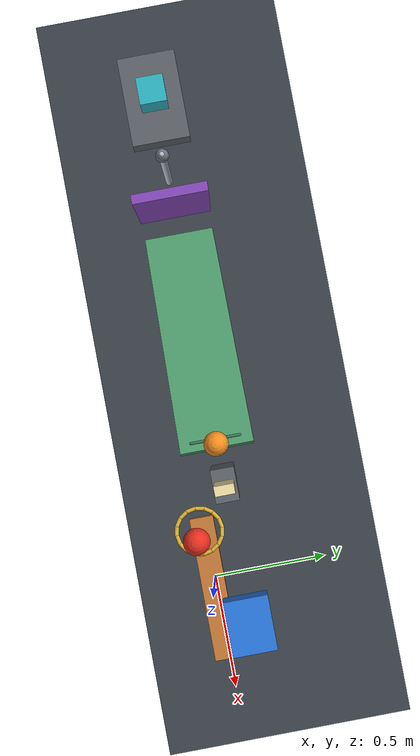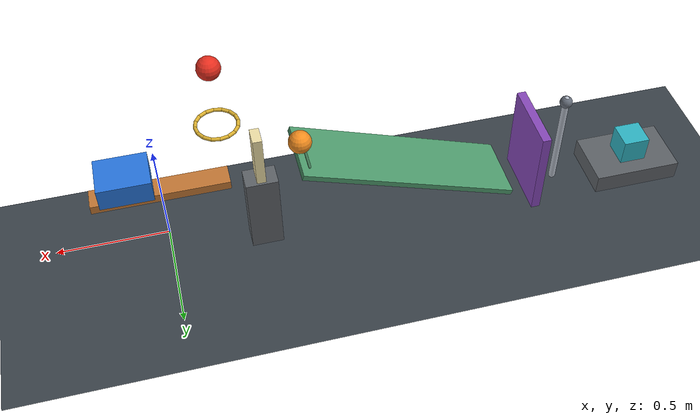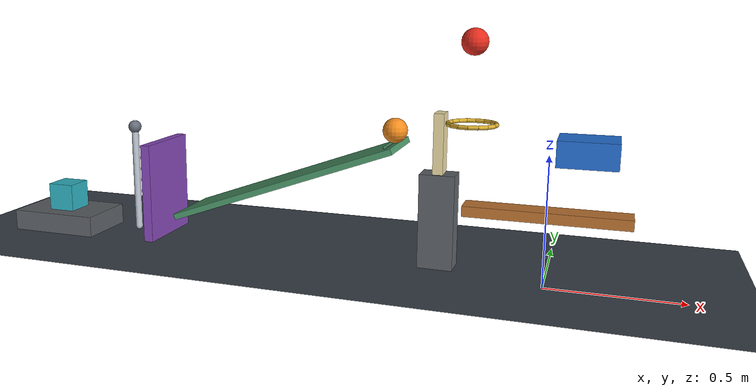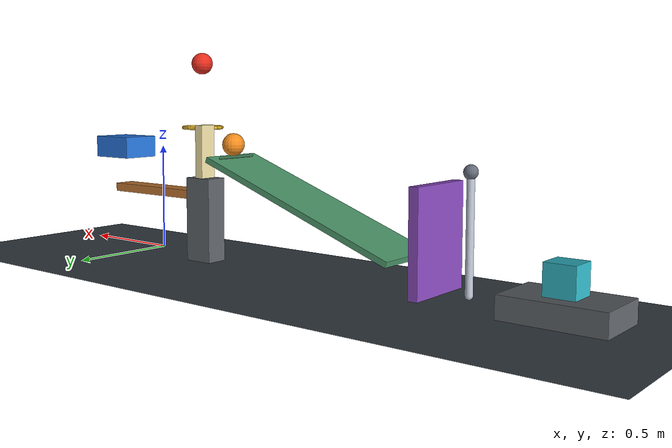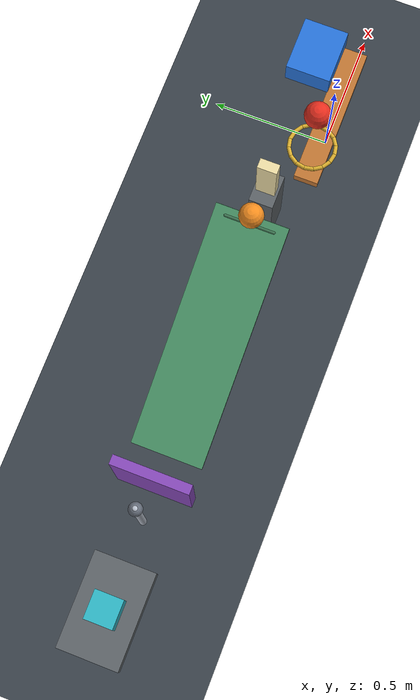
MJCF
<mujoco model="gravity_chain">
  <compiler angle="degree" autolimits="true" inertiafromgeom="true"/>
  <option timestep="0.002" gravity="0 0 -9.81" integrator="implicitfast" cone="elliptic" iterations="100" tolerance="1e-9"/>
  <size njmax="3000" nconmax="500"/>
  <statistic center="-1.0 0.1 0.45" extent="2.5"/>

  <visual>
    <global azimuth="110" elevation="-20"/>
    <headlight ambient="0.4 0.4 0.4" diffuse="0.7 0.7 0.7" specular="0.2 0.2 0.2"/>
  </visual>

  <worldbody>
    <light name="main_light" pos="-0.8 -1.5 4" dir="0 0 -1"/>
    <camera name="overview" pos="-1.0 -3.8 2.1" xyaxes="1 0 0 0 0.4 0.916515"/>

    <geom name="floor" type="plane" size="5 5 0.1" friction="0.72 0.005 0.001" condim="6" solref="0.006 0.7156" solimp="0.95 0.99 0.001" rgba="0.22 0.25 0.28 1"/>

    <!-- Ring center to initial ball center: 0.30 m.
         Ring center to ball center at initial lever contact: 0.25 m.
         The polygonal tube has a minimum clear diameter of 0.16 m. -->
    <body name="ring1" pos="-0.28 0 0.60">
      <geom name="ring1_00" type="capsule" fromto="0.089724 0 0 0.082894 0.034336 0" size="0.008" friction="0.72 0.005 0.001" solref="0.006 0.7156" rgba="0.85 0.68 0.18 1"/>
      <geom name="ring1_01" type="capsule" fromto="0.082894 0.034336 0 0.063445 0.063445 0" size="0.008" friction="0.72 0.005 0.001" solref="0.006 0.7156" rgba="0.85 0.68 0.18 1"/>
      <geom name="ring1_02" type="capsule" fromto="0.063445 0.063445 0 0.034336 0.082894 0" size="0.008" friction="0.72 0.005 0.001" solref="0.006 0.7156" rgba="0.85 0.68 0.18 1"/>
      <geom name="ring1_03" type="capsule" fromto="0.034336 0.082894 0 0 0.089724 0" size="0.008" friction="0.72 0.005 0.001" solref="0.006 0.7156" rgba="0.85 0.68 0.18 1"/>
      <geom name="ring1_04" type="capsule" fromto="0 0.089724 0 -0.034336 0.082894 0" size="0.008" friction="0.72 0.005 0.001" solref="0.006 0.7156" rgba="0.85 0.68 0.18 1"/>
      <geom name="ring1_05" type="capsule" fromto="-0.034336 0.082894 0 -0.063445 0.063445 0" size="0.008" friction="0.72 0.005 0.001" solref="0.006 0.7156" rgba="0.85 0.68 0.18 1"/>
      <geom name="ring1_06" type="capsule" fromto="-0.063445 0.063445 0 -0.082894 0.034336 0" size="0.008" friction="0.72 0.005 0.001" solref="0.006 0.7156" rgba="0.85 0.68 0.18 1"/>
      <geom name="ring1_07" type="capsule" fromto="-0.082894 0.034336 0 -0.089724 0 0" size="0.008" friction="0.72 0.005 0.001" solref="0.006 0.7156" rgba="0.85 0.68 0.18 1"/>
      <geom name="ring1_08" type="capsule" fromto="-0.089724 0 0 -0.082894 -0.034336 0" size="0.008" friction="0.72 0.005 0.001" solref="0.006 0.7156" rgba="0.85 0.68 0.18 1"/>
      <geom name="ring1_09" type="capsule" fromto="-0.082894 -0.034336 0 -0.063445 -0.063445 0" size="0.008" friction="0.72 0.005 0.001" solref="0.006 0.7156" rgba="0.85 0.68 0.18 1"/>
      <geom name="ring1_10" type="capsule" fromto="-0.063445 -0.063445 0 -0.034336 -0.082894 0" size="0.008" friction="0.72 0.005 0.001" solref="0.006 0.7156" rgba="0.85 0.68 0.18 1"/>
      <geom name="ring1_11" type="capsule" fromto="-0.034336 -0.082894 0 0 -0.089724 0" size="0.008" friction="0.72 0.005 0.001" solref="0.006 0.7156" rgba="0.85 0.68 0.18 1"/>
      <geom name="ring1_12" type="capsule" fromto="0 -0.089724 0 0.034336 -0.082894 0" size="0.008" friction="0.72 0.005 0.001" solref="0.006 0.7156" rgba="0.85 0.68 0.18 1"/>
      <geom name="ring1_13" type="capsule" fromto="0.034336 -0.082894 0 0.063445 -0.063445 0" size="0.008" friction="0.72 0.005 0.001" solref="0.006 0.7156" rgba="0.85 0.68 0.18 1"/>
      <geom name="ring1_14" type="capsule" fromto="0.063445 -0.063445 0 0.082894 -0.034336 0" size="0.008" friction="0.72 0.005 0.001" solref="0.006 0.7156" rgba="0.85 0.68 0.18 1"/>
      <geom name="ring1_15" type="capsule" fromto="0.082894 -0.034336 0 0.089724 0 0" size="0.008" friction="0.72 0.005 0.001" solref="0.006 0.7156" rgba="0.85 0.68 0.18 1"/>
    </body>

    <body name="ball1" pos="-0.28 0 0.90">
      <freejoint name="ball1_free"/>
      <geom name="ball1_sphere" type="sphere" size="0.05" mass="0.20" friction="0.72 0.005 0.001" condim="6" solref="0.006 0.7156" solimp="0.95 0.99 0.001" rgba="0.90 0.18 0.12 1"/>
    </body>

    <!-- The rising end engages the cart's lower right corner. -->
    <body name="lever1" pos="0 0 0.28">
      <joint name="lever1_hinge" type="hinge" axis="0 -1 0" range="0 45" damping="0.04" solreflimit="0.004 0.7156" solimplimit="0.95 0.99 0.001"/>
      <geom name="lever1_bar" type="box" size="0.30 0.05 0.02" mass="0.50" friction="0.72 0.005 0.001" condim="6" solref="0.006 0.7156" solimp="0.95 0.99 0.001" rgba="0.75 0.46 0.20 1"/>
    </body>

    <!-- Initial cart-to-domino face separation is exactly 0.42 m. -->
    <body name="cart1" pos="0.13 0.125 0.50">
      <joint name="cart1_slide" type="slide" axis="-1 0 0" range="0 0.46" damping="0.20" solreflimit="0.004 0.7156" solimplimit="0.95 0.99 0.001"/>
      <geom name="cart1_box" type="box" size="0.11 0.09 0.05" mass="0.50" friction="0.72 0.005 0.001" condim="6" solref="0.006 0.7156" solimp="0.95 0.99 0.001" rgba="0.15 0.45 0.85 1"/>
    </body>

    <body name="domino_support" pos="-0.42 0.125 0.19">
      <geom name="domino_support_box" type="box" size="0.07 0.05 0.19" friction="0.72 0.005 0.001" condim="6" solref="0.006 0.7156" solimp="0.95 0.99 0.001" rgba="0.36 0.38 0.40 1"/>
    </body>

    <body name="domino1" pos="-0.42 0.125 0.50">
      <freejoint name="domino1_free"/>
      <geom name="domino1_box" type="box" size="0.02 0.04 0.12" mass="0.25" friction="0.72 0.005 0.001" condim="6" solref="0.006 0.7156" solimp="0.95 0.99 0.001" rgba="0.92 0.86 0.64 1"/>
    </body>

    <!-- Ramp top runs from z=0.15 to z=0.492020.
         A small transverse lip holds ball2 until the domino knocks it free. -->
    <body name="ramp1" pos="-1.048471 0.125 0.309264" euler="0 -20 0">
      <geom name="ramp1_deck" type="box" size="0.50 0.15 0.0125" friction="0.72 0.005 0.001" condim="6" solref="0.006 0.7156" solimp="0.95 0.99 0.001" rgba="0.30 0.60 0.42 1"/>
      <geom name="ramp1_start_lip" type="capsule" fromto="0.465359 -0.10 0.0185 0.465359 0.10 0.0185" size="0.006" friction="0.72 0.005 0.001" condim="6" solref="0.006 0.7156" solimp="0.95 0.99 0.001" rgba="0.24 0.46 0.32 1"/>
    </body>

    <!-- Initial domino-center to ball-center horizontal spacing: 0.18 m. -->
    <body name="ball2" pos="-0.600001 0.125 0.539005">
      <freejoint name="ball2_free"/>
      <geom name="ball2_sphere" type="sphere" size="0.05" mass="0.20" friction="0.72 0.005 0.001" condim="6" solref="0.006 0.7156" solimp="0.95 0.99 0.001" rgba="0.95 0.55 0.12 1"/>
    </body>

    <!-- The ramp's low edge is x=-1.522592.
         The initial near face of the door is x=-1.622592: a 0.10 m gap.
         This upright panel tips about its bottom horizontal edge. -->
    <body name="door1" pos="-1.642592 0.125 0.02">
      <joint name="door1_hinge" type="hinge" axis="0 -1 0" range="0 70" damping="0.04" solreflimit="0.004 0.7156" solimplimit="0.95 0.99 0.001"/>
      <geom name="door1_panel" type="box" pos="0 0 0.21" size="0.02 0.16 0.21" mass="0.45" friction="0.72 0.005 0.001" condim="6" solref="0.006 0.7156" solimp="0.95 0.99 0.001" rgba="0.52 0.28 0.72 1"/>
    </body>

    <!-- A rigid 0.50 m pendulum, total mass 0.35 kg.
         Its upper collar concentrates part of the mass near the pivot. -->
    <body name="pendulum1" pos="-1.784592 0.125 0.52">
      <joint name="pendulum1_hinge" type="hinge" axis="0 1 0" range="0 38" damping="0.04" solreflimit="0.004 0.7156" solimplimit="0.95 0.99 0.001"/>
      <geom name="pendulum1_rod" type="capsule" fromto="0 0 -0.015 0 0 -0.485" size="0.015" mass="0.18" friction="0.72 0.005 0.001" condim="6" solref="0.006 0.7156" solimp="0.95 0.99 0.001" rgba="0.72 0.75 0.80 1"/>
      <geom name="pendulum1_collar" type="sphere" pos="0 0 -0.03" size="0.028" mass="0.17" friction="0.72 0.005 0.001" condim="6" solref="0.006 0.7156" solimp="0.95 0.99 0.001" rgba="0.40 0.43 0.48 1"/>
    </body>

    <body name="block_support" pos="-2.1562 0.125 0.045">
      <geom name="block_support_box" type="box" size="0.20 0.13 0.045" friction="0.72 0.005 0.001" condim="6" solref="0.006 0.7156" solimp="0.95 0.99 0.001" rgba="0.36 0.38 0.40 1"/>
    </body>

    <body name="block1" pos="-2.1562 0.125 0.15">
      <freejoint name="block1_free"/>
      <geom name="block1_cube" type="box" size="0.06 0.06 0.06" mass="0.35" friction="0.72 0.005 0.001" condim="6" solref="0.006 0.7156" solimp="0.95 0.99 0.001" rgba="0.18 0.70 0.76 1"/>
    </body>
  </worldbody>

  <!-- Omitted qpos uses the modeled initial poses; omitted qvel is all zero. -->
  <keyframe>
    <key name="start" time="0"/>
  </keyframe>
</mujoco>
